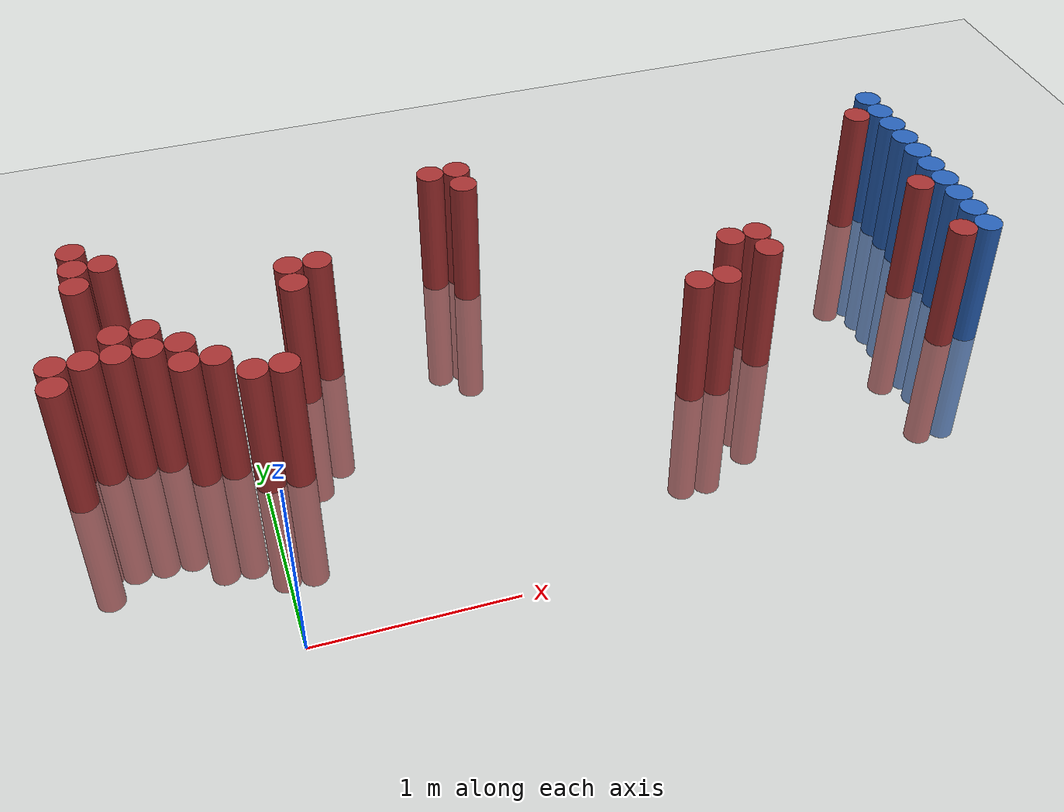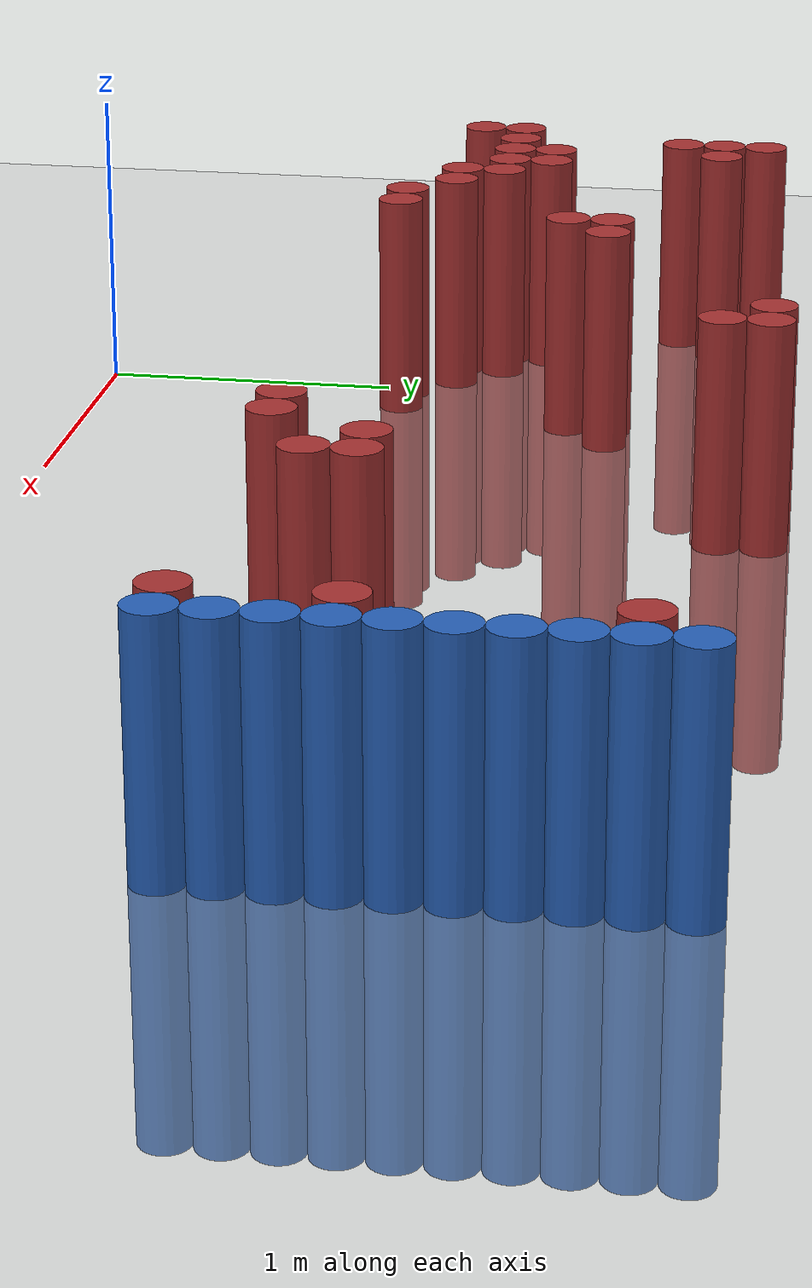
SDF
<sdf version="1.6">
 <world name="default">
  <model name="ground_plane">
   <static>1</static>
   <link name="link">
    <collision name="collision">
     <geometry><plane><normal>0 0 1</normal><size>100 100</size></plane></geometry>
     <surface><friction><ode><mu>100</mu><mu2>50</mu2></ode></friction></surface>
    </collision>
    <visual name="visual">
     <cast_shadows>0</cast_shadows>
     <geometry><plane><normal>0 0 1</normal><size>100 100</size></plane></geometry>
     <material>
      <script><uri>file://media/materials/scripts/gazebo.material</uri><name>Gazebo/Grey</name></script>
     </material>
    </visual>
   </link>
  </model>
  <model name="unit_cylinder_130">
   <static>1</static>
   <pose>3.925000 1.225000 0.000000 0.000000 0.000000 0.000000</pose>
   <link name="link">
    <inertial>
     <mass>1</mass>
     <inertia><ixx>0.145833</ixx><ixy>0</ixy><ixz>0</ixz><iyy>0.145833</iyy><iyz>0</iyz><izz>0.125</izz></inertia>
    </inertial>
    <collision name="collision">
     <geometry><cylinder><radius>0.075000</radius><length>1.5</length></cylinder></geometry>
    </collision>
    <visual name="visual">
     <geometry><cylinder><radius>0.075000</radius><length>1.5</length></cylinder></geometry>
     <material>
      <ambient>0.152000 0.379000 0.720000 1</ambient>
      <diffuse>0.152000 0.379000 0.720000 1</diffuse>
     </material>
     <material>
      <script><name>Gazebo/Grey</name><uri>file://media/materials/scripts/gazebo.material</uri></script>
     </material>
    </visual>
   </link>
  </model>
  <model name="unit_cylinder_132">
   <static>1</static>
   <pose>3.925000 1.375000 0.000000 0.000000 0.000000 0.000000</pose>
   <link name="link">
    <inertial>
     <mass>1</mass>
     <inertia><ixx>0.145833</ixx><ixy>0</ixy><ixz>0</ixz><iyy>0.145833</iyy><iyz>0</iyz><izz>0.125</izz></inertia>
    </inertial>
    <collision name="collision">
     <geometry><cylinder><radius>0.075000</radius><length>1.5</length></cylinder></geometry>
    </collision>
    <visual name="visual">
     <geometry><cylinder><radius>0.075000</radius><length>1.5</length></cylinder></geometry>
     <material>
      <ambient>0.152000 0.379000 0.720000 1</ambient>
      <diffuse>0.152000 0.379000 0.720000 1</diffuse>
     </material>
     <material>
      <script><name>Gazebo/Grey</name><uri>file://media/materials/scripts/gazebo.material</uri></script>
     </material>
    </visual>
   </link>
  </model>
  <model name="unit_cylinder_134">
   <static>1</static>
   <pose>3.925000 1.525000 0.000000 0.000000 0.000000 0.000000</pose>
   <link name="link">
    <inertial>
     <mass>1</mass>
     <inertia><ixx>0.145833</ixx><ixy>0</ixy><ixz>0</ixz><iyy>0.145833</iyy><iyz>0</iyz><izz>0.125</izz></inertia>
    </inertial>
    <collision name="collision">
     <geometry><cylinder><radius>0.075000</radius><length>1.5</length></cylinder></geometry>
    </collision>
    <visual name="visual">
     <geometry><cylinder><radius>0.075000</radius><length>1.5</length></cylinder></geometry>
     <material>
      <ambient>0.152000 0.379000 0.720000 1</ambient>
      <diffuse>0.152000 0.379000 0.720000 1</diffuse>
     </material>
     <material>
      <script><name>Gazebo/Grey</name><uri>file://media/materials/scripts/gazebo.material</uri></script>
     </material>
    </visual>
   </link>
  </model>
  <model name="unit_cylinder_136">
   <static>1</static>
   <pose>3.925000 1.675000 0.000000 0.000000 0.000000 0.000000</pose>
   <link name="link">
    <inertial>
     <mass>1</mass>
     <inertia><ixx>0.145833</ixx><ixy>0</ixy><ixz>0</ixz><iyy>0.145833</iyy><iyz>0</iyz><izz>0.125</izz></inertia>
    </inertial>
    <collision name="collision">
     <geometry><cylinder><radius>0.075000</radius><length>1.5</length></cylinder></geometry>
    </collision>
    <visual name="visual">
     <geometry><cylinder><radius>0.075000</radius><length>1.5</length></cylinder></geometry>
     <material>
      <ambient>0.152000 0.379000 0.720000 1</ambient>
      <diffuse>0.152000 0.379000 0.720000 1</diffuse>
     </material>
     <material>
      <script><name>Gazebo/Grey</name><uri>file://media/materials/scripts/gazebo.material</uri></script>
     </material>
    </visual>
   </link>
  </model>
  <model name="unit_cylinder_138">
   <static>1</static>
   <pose>3.925000 1.825000 0.000000 0.000000 0.000000 0.000000</pose>
   <link name="link">
    <inertial>
     <mass>1</mass>
     <inertia><ixx>0.145833</ixx><ixy>0</ixy><ixz>0</ixz><iyy>0.145833</iyy><iyz>0</iyz><izz>0.125</izz></inertia>
    </inertial>
    <collision name="collision">
     <geometry><cylinder><radius>0.075000</radius><length>1.5</length></cylinder></geometry>
    </collision>
    <visual name="visual">
     <geometry><cylinder><radius>0.075000</radius><length>1.5</length></cylinder></geometry>
     <material>
      <ambient>0.152000 0.379000 0.720000 1</ambient>
      <diffuse>0.152000 0.379000 0.720000 1</diffuse>
     </material>
     <material>
      <script><name>Gazebo/Grey</name><uri>file://media/materials/scripts/gazebo.material</uri></script>
     </material>
    </visual>
   </link>
  </model>
  <model name="unit_cylinder_140">
   <static>1</static>
   <pose>3.925000 1.975000 0.000000 0.000000 0.000000 0.000000</pose>
   <link name="link">
    <inertial>
     <mass>1</mass>
     <inertia><ixx>0.145833</ixx><ixy>0</ixy><ixz>0</ixz><iyy>0.145833</iyy><iyz>0</iyz><izz>0.125</izz></inertia>
    </inertial>
    <collision name="collision">
     <geometry><cylinder><radius>0.075000</radius><length>1.5</length></cylinder></geometry>
    </collision>
    <visual name="visual">
     <geometry><cylinder><radius>0.075000</radius><length>1.5</length></cylinder></geometry>
     <material>
      <ambient>0.152000 0.379000 0.720000 1</ambient>
      <diffuse>0.152000 0.379000 0.720000 1</diffuse>
     </material>
     <material>
      <script><name>Gazebo/Grey</name><uri>file://media/materials/scripts/gazebo.material</uri></script>
     </material>
    </visual>
   </link>
  </model>
  <model name="unit_cylinder_142">
   <static>1</static>
   <pose>3.925000 2.125000 0.000000 0.000000 0.000000 0.000000</pose>
   <link name="link">
    <inertial>
     <mass>1</mass>
     <inertia><ixx>0.145833</ixx><ixy>0</ixy><ixz>0</ixz><iyy>0.145833</iyy><iyz>0</iyz><izz>0.125</izz></inertia>
    </inertial>
    <collision name="collision">
     <geometry><cylinder><radius>0.075000</radius><length>1.5</length></cylinder></geometry>
    </collision>
    <visual name="visual">
     <geometry><cylinder><radius>0.075000</radius><length>1.5</length></cylinder></geometry>
     <material>
      <ambient>0.152000 0.379000 0.720000 1</ambient>
      <diffuse>0.152000 0.379000 0.720000 1</diffuse>
     </material>
     <material>
      <script><name>Gazebo/Grey</name><uri>file://media/materials/scripts/gazebo.material</uri></script>
     </material>
    </visual>
   </link>
  </model>
  <model name="unit_cylinder_144">
   <static>1</static>
   <pose>3.925000 2.275000 0.000000 0.000000 0.000000 0.000000</pose>
   <link name="link">
    <inertial>
     <mass>1</mass>
     <inertia><ixx>0.145833</ixx><ixy>0</ixy><ixz>0</ixz><iyy>0.145833</iyy><iyz>0</iyz><izz>0.125</izz></inertia>
    </inertial>
    <collision name="collision">
     <geometry><cylinder><radius>0.075000</radius><length>1.5</length></cylinder></geometry>
    </collision>
    <visual name="visual">
     <geometry><cylinder><radius>0.075000</radius><length>1.5</length></cylinder></geometry>
     <material>
      <ambient>0.152000 0.379000 0.720000 1</ambient>
      <diffuse>0.152000 0.379000 0.720000 1</diffuse>
     </material>
     <material>
      <script><name>Gazebo/Grey</name><uri>file://media/materials/scripts/gazebo.material</uri></script>
     </material>
    </visual>
   </link>
  </model>
  <model name="unit_cylinder_146">
   <static>1</static>
   <pose>3.925000 2.425000 0.000000 0.000000 0.000000 0.000000</pose>
   <link name="link">
    <inertial>
     <mass>1</mass>
     <inertia><ixx>0.145833</ixx><ixy>0</ixy><ixz>0</ixz><iyy>0.145833</iyy><iyz>0</iyz><izz>0.125</izz></inertia>
    </inertial>
    <collision name="collision">
     <geometry><cylinder><radius>0.075000</radius><length>1.5</length></cylinder></geometry>
    </collision>
    <visual name="visual">
     <geometry><cylinder><radius>0.075000</radius><length>1.5</length></cylinder></geometry>
     <material>
      <ambient>0.152000 0.379000 0.720000 1</ambient>
      <diffuse>0.152000 0.379000 0.720000 1</diffuse>
     </material>
     <material>
      <script><name>Gazebo/Grey</name><uri>file://media/materials/scripts/gazebo.material</uri></script>
     </material>
    </visual>
   </link>
  </model>
  <model name="unit_cylinder_332">
   <static>1</static>
   <pose>-0.875000 1.225000 0.000000 0.000000 0.000000 0.000000</pose>
   <link name="link">
    <inertial>
     <mass>1</mass>
     <inertia><ixx>0.145833</ixx><ixy>0</ixy><ixz>0</ixz><iyy>0.145833</iyy><iyz>0</iyz><izz>0.125</izz></inertia>
    </inertial>
    <collision name="collision">
     <geometry><cylinder><radius>0.075000</radius><length>1.5</length></cylinder></geometry>
    </collision>
    <visual name="visual">
     <geometry><cylinder><radius>0.075000</radius><length>1.5</length></cylinder></geometry>
     <material>
      <ambient>0.648000 0.192000 0.192000 1</ambient>
      <diffuse>0.648000 0.192000 0.192000 1</diffuse>
     </material>
     <material>
      <script><name>Gazebo/Grey</name><uri>file://media/materials/scripts/gazebo.material</uri></script>
     </material>
    </visual>
   </link>
  </model>
  <model name="unit_cylinder_333">
   <static>1</static>
   <pose>-0.875000 1.375000 0.000000 0.000000 0.000000 0.000000</pose>
   <link name="link">
    <inertial>
     <mass>1</mass>
     <inertia><ixx>0.145833</ixx><ixy>0</ixy><ixz>0</ixz><iyy>0.145833</iyy><iyz>0</iyz><izz>0.125</izz></inertia>
    </inertial>
    <collision name="collision">
     <geometry><cylinder><radius>0.075000</radius><length>1.5</length></cylinder></geometry>
    </collision>
    <visual name="visual">
     <geometry><cylinder><radius>0.075000</radius><length>1.5</length></cylinder></geometry>
     <material>
      <ambient>0.648000 0.192000 0.192000 1</ambient>
      <diffuse>0.648000 0.192000 0.192000 1</diffuse>
     </material>
     <material>
      <script><name>Gazebo/Grey</name><uri>file://media/materials/scripts/gazebo.material</uri></script>
     </material>
    </visual>
   </link>
  </model>
  <model name="unit_cylinder_337">
   <static>1</static>
   <pose>-0.725000 1.375000 0.000000 0.000000 0.000000 0.000000</pose>
   <link name="link">
    <inertial>
     <mass>1</mass>
     <inertia><ixx>0.145833</ixx><ixy>0</ixy><ixz>0</ixz><iyy>0.145833</iyy><iyz>0</iyz><izz>0.125</izz></inertia>
    </inertial>
    <collision name="collision">
     <geometry><cylinder><radius>0.075000</radius><length>1.5</length></cylinder></geometry>
    </collision>
    <visual name="visual">
     <geometry><cylinder><radius>0.075000</radius><length>1.5</length></cylinder></geometry>
     <material>
      <ambient>0.648000 0.192000 0.192000 1</ambient>
      <diffuse>0.648000 0.192000 0.192000 1</diffuse>
     </material>
     <material>
      <script><name>Gazebo/Grey</name><uri>file://media/materials/scripts/gazebo.material</uri></script>
     </material>
    </visual>
   </link>
  </model>
  <model name="unit_cylinder_338">
   <static>1</static>
   <pose>-0.725000 1.975000 0.000000 0.000000 0.000000 0.000000</pose>
   <link name="link">
    <inertial>
     <mass>1</mass>
     <inertia><ixx>0.145833</ixx><ixy>0</ixy><ixz>0</ixz><iyy>0.145833</iyy><iyz>0</iyz><izz>0.125</izz></inertia>
    </inertial>
    <collision name="collision">
     <geometry><cylinder><radius>0.075000</radius><length>1.5</length></cylinder></geometry>
    </collision>
    <visual name="visual">
     <geometry><cylinder><radius>0.075000</radius><length>1.5</length></cylinder></geometry>
     <material>
      <ambient>0.648000 0.192000 0.192000 1</ambient>
      <diffuse>0.648000 0.192000 0.192000 1</diffuse>
     </material>
     <material>
      <script><name>Gazebo/Grey</name><uri>file://media/materials/scripts/gazebo.material</uri></script>
     </material>
    </visual>
   </link>
  </model>
  <model name="unit_cylinder_339">
   <static>1</static>
   <pose>-0.725000 2.125000 0.000000 0.000000 0.000000 0.000000</pose>
   <link name="link">
    <inertial>
     <mass>1</mass>
     <inertia><ixx>0.145833</ixx><ixy>0</ixy><ixz>0</ixz><iyy>0.145833</iyy><iyz>0</iyz><izz>0.125</izz></inertia>
    </inertial>
    <collision name="collision">
     <geometry><cylinder><radius>0.075000</radius><length>1.5</length></cylinder></geometry>
    </collision>
    <visual name="visual">
     <geometry><cylinder><radius>0.075000</radius><length>1.5</length></cylinder></geometry>
     <material>
      <ambient>0.648000 0.192000 0.192000 1</ambient>
      <diffuse>0.648000 0.192000 0.192000 1</diffuse>
     </material>
     <material>
      <script><name>Gazebo/Grey</name><uri>file://media/materials/scripts/gazebo.material</uri></script>
     </material>
    </visual>
   </link>
  </model>
  <model name="unit_cylinder_340">
   <static>1</static>
   <pose>-0.725000 2.275000 0.000000 0.000000 0.000000 0.000000</pose>
   <link name="link">
    <inertial>
     <mass>1</mass>
     <inertia><ixx>0.145833</ixx><ixy>0</ixy><ixz>0</ixz><iyy>0.145833</iyy><iyz>0</iyz><izz>0.125</izz></inertia>
    </inertial>
    <collision name="collision">
     <geometry><cylinder><radius>0.075000</radius><length>1.5</length></cylinder></geometry>
    </collision>
    <visual name="visual">
     <geometry><cylinder><radius>0.075000</radius><length>1.5</length></cylinder></geometry>
     <material>
      <ambient>0.648000 0.192000 0.192000 1</ambient>
      <diffuse>0.648000 0.192000 0.192000 1</diffuse>
     </material>
     <material>
      <script><name>Gazebo/Grey</name><uri>file://media/materials/scripts/gazebo.material</uri></script>
     </material>
    </visual>
   </link>
  </model>
  <model name="unit_cylinder_344">
   <static>1</static>
   <pose>-0.575000 1.375000 0.000000 0.000000 0.000000 0.000000</pose>
   <link name="link">
    <inertial>
     <mass>1</mass>
     <inertia><ixx>0.145833</ixx><ixy>0</ixy><ixz>0</ixz><iyy>0.145833</iyy><iyz>0</iyz><izz>0.125</izz></inertia>
    </inertial>
    <collision name="collision">
     <geometry><cylinder><radius>0.075000</radius><length>1.5</length></cylinder></geometry>
    </collision>
    <visual name="visual">
     <geometry><cylinder><radius>0.075000</radius><length>1.5</length></cylinder></geometry>
     <material>
      <ambient>0.648000 0.192000 0.192000 1</ambient>
      <diffuse>0.648000 0.192000 0.192000 1</diffuse>
     </material>
     <material>
      <script><name>Gazebo/Grey</name><uri>file://media/materials/scripts/gazebo.material</uri></script>
     </material>
    </visual>
   </link>
  </model>
  <model name="unit_cylinder_345">
   <static>1</static>
   <pose>-0.575000 1.525000 0.000000 0.000000 0.000000 0.000000</pose>
   <link name="link">
    <inertial>
     <mass>1</mass>
     <inertia><ixx>0.145833</ixx><ixy>0</ixy><ixz>0</ixz><iyy>0.145833</iyy><iyz>0</iyz><izz>0.125</izz></inertia>
    </inertial>
    <collision name="collision">
     <geometry><cylinder><radius>0.075000</radius><length>1.5</length></cylinder></geometry>
    </collision>
    <visual name="visual">
     <geometry><cylinder><radius>0.075000</radius><length>1.5</length></cylinder></geometry>
     <material>
      <ambient>0.648000 0.192000 0.192000 1</ambient>
      <diffuse>0.648000 0.192000 0.192000 1</diffuse>
     </material>
     <material>
      <script><name>Gazebo/Grey</name><uri>file://media/materials/scripts/gazebo.material</uri></script>
     </material>
    </visual>
   </link>
  </model>
  <model name="unit_cylinder_346">
   <static>1</static>
   <pose>-0.575000 2.125000 0.000000 0.000000 0.000000 0.000000</pose>
   <link name="link">
    <inertial>
     <mass>1</mass>
     <inertia><ixx>0.145833</ixx><ixy>0</ixy><ixz>0</ixz><iyy>0.145833</iyy><iyz>0</iyz><izz>0.125</izz></inertia>
    </inertial>
    <collision name="collision">
     <geometry><cylinder><radius>0.075000</radius><length>1.5</length></cylinder></geometry>
    </collision>
    <visual name="visual">
     <geometry><cylinder><radius>0.075000</radius><length>1.5</length></cylinder></geometry>
     <material>
      <ambient>0.648000 0.192000 0.192000 1</ambient>
      <diffuse>0.648000 0.192000 0.192000 1</diffuse>
     </material>
     <material>
      <script><name>Gazebo/Grey</name><uri>file://media/materials/scripts/gazebo.material</uri></script>
     </material>
    </visual>
   </link>
  </model>
  <model name="unit_cylinder_349">
   <static>1</static>
   <pose>-0.425000 1.375000 0.000000 0.000000 0.000000 0.000000</pose>
   <link name="link">
    <inertial>
     <mass>1</mass>
     <inertia><ixx>0.145833</ixx><ixy>0</ixy><ixz>0</ixz><iyy>0.145833</iyy><iyz>0</iyz><izz>0.125</izz></inertia>
    </inertial>
    <collision name="collision">
     <geometry><cylinder><radius>0.075000</radius><length>1.5</length></cylinder></geometry>
    </collision>
    <visual name="visual">
     <geometry><cylinder><radius>0.075000</radius><length>1.5</length></cylinder></geometry>
     <material>
      <ambient>0.648000 0.192000 0.192000 1</ambient>
      <diffuse>0.648000 0.192000 0.192000 1</diffuse>
     </material>
     <material>
      <script><name>Gazebo/Grey</name><uri>file://media/materials/scripts/gazebo.material</uri></script>
     </material>
    </visual>
   </link>
  </model>
  <model name="unit_cylinder_350">
   <static>1</static>
   <pose>-0.425000 1.525000 0.000000 0.000000 0.000000 0.000000</pose>
   <link name="link">
    <inertial>
     <mass>1</mass>
     <inertia><ixx>0.145833</ixx><ixy>0</ixy><ixz>0</ixz><iyy>0.145833</iyy><iyz>0</iyz><izz>0.125</izz></inertia>
    </inertial>
    <collision name="collision">
     <geometry><cylinder><radius>0.075000</radius><length>1.5</length></cylinder></geometry>
    </collision>
    <visual name="visual">
     <geometry><cylinder><radius>0.075000</radius><length>1.5</length></cylinder></geometry>
     <material>
      <ambient>0.648000 0.192000 0.192000 1</ambient>
      <diffuse>0.648000 0.192000 0.192000 1</diffuse>
     </material>
     <material>
      <script><name>Gazebo/Grey</name><uri>file://media/materials/scripts/gazebo.material</uri></script>
     </material>
    </visual>
   </link>
  </model>
  <model name="unit_cylinder_354">
   <static>1</static>
   <pose>-0.275000 1.225000 0.000000 0.000000 0.000000 0.000000</pose>
   <link name="link">
    <inertial>
     <mass>1</mass>
     <inertia><ixx>0.145833</ixx><ixy>0</ixy><ixz>0</ixz><iyy>0.145833</iyy><iyz>0</iyz><izz>0.125</izz></inertia>
    </inertial>
    <collision name="collision">
     <geometry><cylinder><radius>0.075000</radius><length>1.5</length></cylinder></geometry>
    </collision>
    <visual name="visual">
     <geometry><cylinder><radius>0.075000</radius><length>1.5</length></cylinder></geometry>
     <material>
      <ambient>0.648000 0.192000 0.192000 1</ambient>
      <diffuse>0.648000 0.192000 0.192000 1</diffuse>
     </material>
     <material>
      <script><name>Gazebo/Grey</name><uri>file://media/materials/scripts/gazebo.material</uri></script>
     </material>
    </visual>
   </link>
  </model>
  <model name="unit_cylinder_355">
   <static>1</static>
   <pose>-0.275000 1.375000 0.000000 0.000000 0.000000 0.000000</pose>
   <link name="link">
    <inertial>
     <mass>1</mass>
     <inertia><ixx>0.145833</ixx><ixy>0</ixy><ixz>0</ixz><iyy>0.145833</iyy><iyz>0</iyz><izz>0.125</izz></inertia>
    </inertial>
    <collision name="collision">
     <geometry><cylinder><radius>0.075000</radius><length>1.5</length></cylinder></geometry>
    </collision>
    <visual name="visual">
     <geometry><cylinder><radius>0.075000</radius><length>1.5</length></cylinder></geometry>
     <material>
      <ambient>0.648000 0.192000 0.192000 1</ambient>
      <diffuse>0.648000 0.192000 0.192000 1</diffuse>
     </material>
     <material>
      <script><name>Gazebo/Grey</name><uri>file://media/materials/scripts/gazebo.material</uri></script>
     </material>
    </visual>
   </link>
  </model>
  <model name="unit_cylinder_357">
   <static>1</static>
   <pose>-0.125000 1.225000 0.000000 0.000000 0.000000 0.000000</pose>
   <link name="link">
    <inertial>
     <mass>1</mass>
     <inertia><ixx>0.145833</ixx><ixy>0</ixy><ixz>0</ixz><iyy>0.145833</iyy><iyz>0</iyz><izz>0.125</izz></inertia>
    </inertial>
    <collision name="collision">
     <geometry><cylinder><radius>0.075000</radius><length>1.5</length></cylinder></geometry>
    </collision>
    <visual name="visual">
     <geometry><cylinder><radius>0.075000</radius><length>1.5</length></cylinder></geometry>
     <material>
      <ambient>0.648000 0.192000 0.192000 1</ambient>
      <diffuse>0.648000 0.192000 0.192000 1</diffuse>
     </material>
     <material>
      <script><name>Gazebo/Grey</name><uri>file://media/materials/scripts/gazebo.material</uri></script>
     </material>
    </visual>
   </link>
  </model>
  <model name="unit_cylinder_364">
   <static>1</static>
   <pose>0.025000 1.075000 0.000000 0.000000 0.000000 0.000000</pose>
   <link name="link">
    <inertial>
     <mass>1</mass>
     <inertia><ixx>0.145833</ixx><ixy>0</ixy><ixz>0</ixz><iyy>0.145833</iyy><iyz>0</iyz><izz>0.125</izz></inertia>
    </inertial>
    <collision name="collision">
     <geometry><cylinder><radius>0.075000</radius><length>1.5</length></cylinder></geometry>
    </collision>
    <visual name="visual">
     <geometry><cylinder><radius>0.075000</radius><length>1.5</length></cylinder></geometry>
     <material>
      <ambient>0.648000 0.192000 0.192000 1</ambient>
      <diffuse>0.648000 0.192000 0.192000 1</diffuse>
     </material>
     <material>
      <script><name>Gazebo/Grey</name><uri>file://media/materials/scripts/gazebo.material</uri></script>
     </material>
    </visual>
   </link>
  </model>
  <model name="unit_cylinder_373">
   <static>1</static>
   <pose>0.175000 1.075000 0.000000 0.000000 0.000000 0.000000</pose>
   <link name="link">
    <inertial>
     <mass>1</mass>
     <inertia><ixx>0.145833</ixx><ixy>0</ixy><ixz>0</ixz><iyy>0.145833</iyy><iyz>0</iyz><izz>0.125</izz></inertia>
    </inertial>
    <collision name="collision">
     <geometry><cylinder><radius>0.075000</radius><length>1.5</length></cylinder></geometry>
    </collision>
    <visual name="visual">
     <geometry><cylinder><radius>0.075000</radius><length>1.5</length></cylinder></geometry>
     <material>
      <ambient>0.648000 0.192000 0.192000 1</ambient>
      <diffuse>0.648000 0.192000 0.192000 1</diffuse>
     </material>
     <material>
      <script><name>Gazebo/Grey</name><uri>file://media/materials/scripts/gazebo.material</uri></script>
     </material>
    </visual>
   </link>
  </model>
  <model name="unit_cylinder_379">
   <static>1</static>
   <pose>0.325000 1.675000 0.000000 0.000000 0.000000 0.000000</pose>
   <link name="link">
    <inertial>
     <mass>1</mass>
     <inertia><ixx>0.145833</ixx><ixy>0</ixy><ixz>0</ixz><iyy>0.145833</iyy><iyz>0</iyz><izz>0.125</izz></inertia>
    </inertial>
    <collision name="collision">
     <geometry><cylinder><radius>0.075000</radius><length>1.5</length></cylinder></geometry>
    </collision>
    <visual name="visual">
     <geometry><cylinder><radius>0.075000</radius><length>1.5</length></cylinder></geometry>
     <material>
      <ambient>0.648000 0.192000 0.192000 1</ambient>
      <diffuse>0.648000 0.192000 0.192000 1</diffuse>
     </material>
     <material>
      <script><name>Gazebo/Grey</name><uri>file://media/materials/scripts/gazebo.material</uri></script>
     </material>
    </visual>
   </link>
  </model>
  <model name="unit_cylinder_380">
   <static>1</static>
   <pose>0.325000 1.825000 0.000000 0.000000 0.000000 0.000000</pose>
   <link name="link">
    <inertial>
     <mass>1</mass>
     <inertia><ixx>0.145833</ixx><ixy>0</ixy><ixz>0</ixz><iyy>0.145833</iyy><iyz>0</iyz><izz>0.125</izz></inertia>
    </inertial>
    <collision name="collision">
     <geometry><cylinder><radius>0.075000</radius><length>1.5</length></cylinder></geometry>
    </collision>
    <visual name="visual">
     <geometry><cylinder><radius>0.075000</radius><length>1.5</length></cylinder></geometry>
     <material>
      <ambient>0.648000 0.192000 0.192000 1</ambient>
      <diffuse>0.648000 0.192000 0.192000 1</diffuse>
     </material>
     <material>
      <script><name>Gazebo/Grey</name><uri>file://media/materials/scripts/gazebo.material</uri></script>
     </material>
    </visual>
   </link>
  </model>
  <model name="unit_cylinder_383">
   <static>1</static>
   <pose>0.475000 1.825000 0.000000 0.000000 0.000000 0.000000</pose>
   <link name="link">
    <inertial>
     <mass>1</mass>
     <inertia><ixx>0.145833</ixx><ixy>0</ixy><ixz>0</ixz><iyy>0.145833</iyy><iyz>0</iyz><izz>0.125</izz></inertia>
    </inertial>
    <collision name="collision">
     <geometry><cylinder><radius>0.075000</radius><length>1.5</length></cylinder></geometry>
    </collision>
    <visual name="visual">
     <geometry><cylinder><radius>0.075000</radius><length>1.5</length></cylinder></geometry>
     <material>
      <ambient>0.648000 0.192000 0.192000 1</ambient>
      <diffuse>0.648000 0.192000 0.192000 1</diffuse>
     </material>
     <material>
      <script><name>Gazebo/Grey</name><uri>file://media/materials/scripts/gazebo.material</uri></script>
     </material>
    </visual>
   </link>
  </model>
  <model name="unit_cylinder_399">
   <static>1</static>
   <pose>1.225000 2.425000 0.000000 0.000000 0.000000 0.000000</pose>
   <link name="link">
    <inertial>
     <mass>1</mass>
     <inertia><ixx>0.145833</ixx><ixy>0</ixy><ixz>0</ixz><iyy>0.145833</iyy><iyz>0</iyz><izz>0.125</izz></inertia>
    </inertial>
    <collision name="collision">
     <geometry><cylinder><radius>0.075000</radius><length>1.5</length></cylinder></geometry>
    </collision>
    <visual name="visual">
     <geometry><cylinder><radius>0.075000</radius><length>1.5</length></cylinder></geometry>
     <material>
      <ambient>0.648000 0.192000 0.192000 1</ambient>
      <diffuse>0.648000 0.192000 0.192000 1</diffuse>
     </material>
     <material>
      <script><name>Gazebo/Grey</name><uri>file://media/materials/scripts/gazebo.material</uri></script>
     </material>
    </visual>
   </link>
  </model>
  <model name="unit_cylinder_401">
   <static>1</static>
   <pose>1.375000 2.275000 0.000000 0.000000 0.000000 0.000000</pose>
   <link name="link">
    <inertial>
     <mass>1</mass>
     <inertia><ixx>0.145833</ixx><ixy>0</ixy><ixz>0</ixz><iyy>0.145833</iyy><iyz>0</iyz><izz>0.125</izz></inertia>
    </inertial>
    <collision name="collision">
     <geometry><cylinder><radius>0.075000</radius><length>1.5</length></cylinder></geometry>
    </collision>
    <visual name="visual">
     <geometry><cylinder><radius>0.075000</radius><length>1.5</length></cylinder></geometry>
     <material>
      <ambient>0.648000 0.192000 0.192000 1</ambient>
      <diffuse>0.648000 0.192000 0.192000 1</diffuse>
     </material>
     <material>
      <script><name>Gazebo/Grey</name><uri>file://media/materials/scripts/gazebo.material</uri></script>
     </material>
    </visual>
   </link>
  </model>
  <model name="unit_cylinder_402">
   <static>1</static>
   <pose>1.375000 2.425000 0.000000 0.000000 0.000000 0.000000</pose>
   <link name="link">
    <inertial>
     <mass>1</mass>
     <inertia><ixx>0.145833</ixx><ixy>0</ixy><ixz>0</ixz><iyy>0.145833</iyy><iyz>0</iyz><izz>0.125</izz></inertia>
    </inertial>
    <collision name="collision">
     <geometry><cylinder><radius>0.075000</radius><length>1.5</length></cylinder></geometry>
    </collision>
    <visual name="visual">
     <geometry><cylinder><radius>0.075000</radius><length>1.5</length></cylinder></geometry>
     <material>
      <ambient>0.648000 0.192000 0.192000 1</ambient>
      <diffuse>0.648000 0.192000 0.192000 1</diffuse>
     </material>
     <material>
      <script><name>Gazebo/Grey</name><uri>file://media/materials/scripts/gazebo.material</uri></script>
     </material>
    </visual>
   </link>
  </model>
  <model name="unit_cylinder_411">
   <static>1</static>
   <pose>2.275000 1.075000 0.000000 0.000000 0.000000 0.000000</pose>
   <link name="link">
    <inertial>
     <mass>1</mass>
     <inertia><ixx>0.145833</ixx><ixy>0</ixy><ixz>0</ixz><iyy>0.145833</iyy><iyz>0</iyz><izz>0.125</izz></inertia>
    </inertial>
    <collision name="collision">
     <geometry><cylinder><radius>0.075000</radius><length>1.5</length></cylinder></geometry>
    </collision>
    <visual name="visual">
     <geometry><cylinder><radius>0.075000</radius><length>1.5</length></cylinder></geometry>
     <material>
      <ambient>0.648000 0.192000 0.192000 1</ambient>
      <diffuse>0.648000 0.192000 0.192000 1</diffuse>
     </material>
     <material>
      <script><name>Gazebo/Grey</name><uri>file://media/materials/scripts/gazebo.material</uri></script>
     </material>
    </visual>
   </link>
  </model>
  <model name="unit_cylinder_414">
   <static>1</static>
   <pose>2.425000 1.075000 0.000000 0.000000 0.000000 0.000000</pose>
   <link name="link">
    <inertial>
     <mass>1</mass>
     <inertia><ixx>0.145833</ixx><ixy>0</ixy><ixz>0</ixz><iyy>0.145833</iyy><iyz>0</iyz><izz>0.125</izz></inertia>
    </inertial>
    <collision name="collision">
     <geometry><cylinder><radius>0.075000</radius><length>1.5</length></cylinder></geometry>
    </collision>
    <visual name="visual">
     <geometry><cylinder><radius>0.075000</radius><length>1.5</length></cylinder></geometry>
     <material>
      <ambient>0.648000 0.192000 0.192000 1</ambient>
      <diffuse>0.648000 0.192000 0.192000 1</diffuse>
     </material>
     <material>
      <script><name>Gazebo/Grey</name><uri>file://media/materials/scripts/gazebo.material</uri></script>
     </material>
    </visual>
   </link>
  </model>
  <model name="unit_cylinder_417">
   <static>1</static>
   <pose>2.575000 1.375000 0.000000 0.000000 0.000000 0.000000</pose>
   <link name="link">
    <inertial>
     <mass>1</mass>
     <inertia><ixx>0.145833</ixx><ixy>0</ixy><ixz>0</ixz><iyy>0.145833</iyy><iyz>0</iyz><izz>0.125</izz></inertia>
    </inertial>
    <collision name="collision">
     <geometry><cylinder><radius>0.075000</radius><length>1.5</length></cylinder></geometry>
    </collision>
    <visual name="visual">
     <geometry><cylinder><radius>0.075000</radius><length>1.5</length></cylinder></geometry>
     <material>
      <ambient>0.648000 0.192000 0.192000 1</ambient>
      <diffuse>0.648000 0.192000 0.192000 1</diffuse>
     </material>
     <material>
      <script><name>Gazebo/Grey</name><uri>file://media/materials/scripts/gazebo.material</uri></script>
     </material>
    </visual>
   </link>
  </model>
  <model name="unit_cylinder_418">
   <static>1</static>
   <pose>2.725000 1.225000 0.000000 0.000000 0.000000 0.000000</pose>
   <link name="link">
    <inertial>
     <mass>1</mass>
     <inertia><ixx>0.145833</ixx><ixy>0</ixy><ixz>0</ixz><iyy>0.145833</iyy><iyz>0</iyz><izz>0.125</izz></inertia>
    </inertial>
    <collision name="collision">
     <geometry><cylinder><radius>0.075000</radius><length>1.5</length></cylinder></geometry>
    </collision>
    <visual name="visual">
     <geometry><cylinder><radius>0.075000</radius><length>1.5</length></cylinder></geometry>
     <material>
      <ambient>0.648000 0.192000 0.192000 1</ambient>
      <diffuse>0.648000 0.192000 0.192000 1</diffuse>
     </material>
     <material>
      <script><name>Gazebo/Grey</name><uri>file://media/materials/scripts/gazebo.material</uri></script>
     </material>
    </visual>
   </link>
  </model>
  <model name="unit_cylinder_419">
   <static>1</static>
   <pose>2.725000 1.375000 0.000000 0.000000 0.000000 0.000000</pose>
   <link name="link">
    <inertial>
     <mass>1</mass>
     <inertia><ixx>0.145833</ixx><ixy>0</ixy><ixz>0</ixz><iyy>0.145833</iyy><iyz>0</iyz><izz>0.125</izz></inertia>
    </inertial>
    <collision name="collision">
     <geometry><cylinder><radius>0.075000</radius><length>1.5</length></cylinder></geometry>
    </collision>
    <visual name="visual">
     <geometry><cylinder><radius>0.075000</radius><length>1.5</length></cylinder></geometry>
     <material>
      <ambient>0.648000 0.192000 0.192000 1</ambient>
      <diffuse>0.648000 0.192000 0.192000 1</diffuse>
     </material>
     <material>
      <script><name>Gazebo/Grey</name><uri>file://media/materials/scripts/gazebo.material</uri></script>
     </material>
    </visual>
   </link>
  </model>
  <model name="unit_cylinder_436">
   <static>1</static>
   <pose>3.775000 1.075000 0.000000 0.000000 0.000000 0.000000</pose>
   <link name="link">
    <inertial>
     <mass>1</mass>
     <inertia><ixx>0.145833</ixx><ixy>0</ixy><ixz>0</ixz><iyy>0.145833</iyy><iyz>0</iyz><izz>0.125</izz></inertia>
    </inertial>
    <collision name="collision">
     <geometry><cylinder><radius>0.075000</radius><length>1.5</length></cylinder></geometry>
    </collision>
    <visual name="visual">
     <geometry><cylinder><radius>0.075000</radius><length>1.5</length></cylinder></geometry>
     <material>
      <ambient>0.648000 0.192000 0.192000 1</ambient>
      <diffuse>0.648000 0.192000 0.192000 1</diffuse>
     </material>
     <material>
      <script><name>Gazebo/Grey</name><uri>file://media/materials/scripts/gazebo.material</uri></script>
     </material>
    </visual>
   </link>
  </model>
  <model name="unit_cylinder_437">
   <static>1</static>
   <pose>3.775000 1.525000 0.000000 0.000000 0.000000 0.000000</pose>
   <link name="link">
    <inertial>
     <mass>1</mass>
     <inertia><ixx>0.145833</ixx><ixy>0</ixy><ixz>0</ixz><iyy>0.145833</iyy><iyz>0</iyz><izz>0.125</izz></inertia>
    </inertial>
    <collision name="collision">
     <geometry><cylinder><radius>0.075000</radius><length>1.5</length></cylinder></geometry>
    </collision>
    <visual name="visual">
     <geometry><cylinder><radius>0.075000</radius><length>1.5</length></cylinder></geometry>
     <material>
      <ambient>0.648000 0.192000 0.192000 1</ambient>
      <diffuse>0.648000 0.192000 0.192000 1</diffuse>
     </material>
     <material>
      <script><name>Gazebo/Grey</name><uri>file://media/materials/scripts/gazebo.material</uri></script>
     </material>
    </visual>
   </link>
  </model>
  <model name="unit_cylinder_438">
   <static>1</static>
   <pose>3.775000 2.275000 0.000000 0.000000 0.000000 0.000000</pose>
   <link name="link">
    <inertial>
     <mass>1</mass>
     <inertia><ixx>0.145833</ixx><ixy>0</ixy><ixz>0</ixz><iyy>0.145833</iyy><iyz>0</iyz><izz>0.125</izz></inertia>
    </inertial>
    <collision name="collision">
     <geometry><cylinder><radius>0.075000</radius><length>1.5</length></cylinder></geometry>
    </collision>
    <visual name="visual">
     <geometry><cylinder><radius>0.075000</radius><length>1.5</length></cylinder></geometry>
     <material>
      <ambient>0.648000 0.192000 0.192000 1</ambient>
      <diffuse>0.648000 0.192000 0.192000 1</diffuse>
     </material>
     <material>
      <script><name>Gazebo/Grey</name><uri>file://media/materials/scripts/gazebo.material</uri></script>
     </material>
    </visual>
   </link>
  </model>
  <model name="unit_cylinder_464">
   <static>1</static>
   <pose>3.925000 1.075000 0.000000 0.000000 0.000000 0.000000</pose>
   <link name="link">
    <inertial>
     <mass>1</mass>
     <inertia><ixx>0.145833</ixx><ixy>0</ixy><ixz>0</ixz><iyy>0.145833</iyy><iyz>0</iyz><izz>0.125</izz></inertia>
    </inertial>
    <collision name="collision">
     <geometry><cylinder><radius>0.075000</radius><length>1.5</length></cylinder></geometry>
    </collision>
    <visual name="visual">
     <geometry><cylinder><radius>0.075000</radius><length>1.5</length></cylinder></geometry>
     <material>
      <ambient>0.152000 0.379000 0.720000 1</ambient>
      <diffuse>0.152000 0.379000 0.720000 1</diffuse>
     </material>
     <material>
      <script><name>Gazebo/Grey</name><uri>file://media/materials/scripts/gazebo.material</uri></script>
     </material>
    </visual>
   </link>
  </model>
  <model name="unit_cylinder_465">
   <static>1</static>
   <pose>3.925000 1.225000 0.000000 0.000000 0.000000 0.000000</pose>
   <link name="link">
    <inertial>
     <mass>1</mass>
     <inertia><ixx>0.145833</ixx><ixy>0</ixy><ixz>0</ixz><iyy>0.145833</iyy><iyz>0</iyz><izz>0.125</izz></inertia>
    </inertial>
    <collision name="collision">
     <geometry><cylinder><radius>0.075000</radius><length>1.5</length></cylinder></geometry>
    </collision>
    <visual name="visual">
     <geometry><cylinder><radius>0.075000</radius><length>1.5</length></cylinder></geometry>
     <material>
      <ambient>0.152000 0.379000 0.720000 1</ambient>
      <diffuse>0.152000 0.379000 0.720000 1</diffuse>
     </material>
     <material>
      <script><name>Gazebo/Grey</name><uri>file://media/materials/scripts/gazebo.material</uri></script>
     </material>
    </visual>
   </link>
  </model>
  <model name="unit_cylinder_466">
   <static>1</static>
   <pose>3.925000 1.375000 0.000000 0.000000 0.000000 0.000000</pose>
   <link name="link">
    <inertial>
     <mass>1</mass>
     <inertia><ixx>0.145833</ixx><ixy>0</ixy><ixz>0</ixz><iyy>0.145833</iyy><iyz>0</iyz><izz>0.125</izz></inertia>
    </inertial>
    <collision name="collision">
     <geometry><cylinder><radius>0.075000</radius><length>1.5</length></cylinder></geometry>
    </collision>
    <visual name="visual">
     <geometry><cylinder><radius>0.075000</radius><length>1.5</length></cylinder></geometry>
     <material>
      <ambient>0.152000 0.379000 0.720000 1</ambient>
      <diffuse>0.152000 0.379000 0.720000 1</diffuse>
     </material>
     <material>
      <script><name>Gazebo/Grey</name><uri>file://media/materials/scripts/gazebo.material</uri></script>
     </material>
    </visual>
   </link>
  </model>
  <model name="unit_cylinder_467">
   <static>1</static>
   <pose>3.925000 1.525000 0.000000 0.000000 0.000000 0.000000</pose>
   <link name="link">
    <inertial>
     <mass>1</mass>
     <inertia><ixx>0.145833</ixx><ixy>0</ixy><ixz>0</ixz><iyy>0.145833</iyy><iyz>0</iyz><izz>0.125</izz></inertia>
    </inertial>
    <collision name="collision">
     <geometry><cylinder><radius>0.075000</radius><length>1.5</length></cylinder></geometry>
    </collision>
    <visual name="visual">
     <geometry><cylinder><radius>0.075000</radius><length>1.5</length></cylinder></geometry>
     <material>
      <ambient>0.152000 0.379000 0.720000 1</ambient>
      <diffuse>0.152000 0.379000 0.720000 1</diffuse>
     </material>
     <material>
      <script><name>Gazebo/Grey</name><uri>file://media/materials/scripts/gazebo.material</uri></script>
     </material>
    </visual>
   </link>
  </model>
  <model name="unit_cylinder_468">
   <static>1</static>
   <pose>3.925000 1.675000 0.000000 0.000000 0.000000 0.000000</pose>
   <link name="link">
    <inertial>
     <mass>1</mass>
     <inertia><ixx>0.145833</ixx><ixy>0</ixy><ixz>0</ixz><iyy>0.145833</iyy><iyz>0</iyz><izz>0.125</izz></inertia>
    </inertial>
    <collision name="collision">
     <geometry><cylinder><radius>0.075000</radius><length>1.5</length></cylinder></geometry>
    </collision>
    <visual name="visual">
     <geometry><cylinder><radius>0.075000</radius><length>1.5</length></cylinder></geometry>
     <material>
      <ambient>0.152000 0.379000 0.720000 1</ambient>
      <diffuse>0.152000 0.379000 0.720000 1</diffuse>
     </material>
     <material>
      <script><name>Gazebo/Grey</name><uri>file://media/materials/scripts/gazebo.material</uri></script>
     </material>
    </visual>
   </link>
  </model>
  <model name="unit_cylinder_469">
   <static>1</static>
   <pose>3.925000 1.825000 0.000000 0.000000 0.000000 0.000000</pose>
   <link name="link">
    <inertial>
     <mass>1</mass>
     <inertia><ixx>0.145833</ixx><ixy>0</ixy><ixz>0</ixz><iyy>0.145833</iyy><iyz>0</iyz><izz>0.125</izz></inertia>
    </inertial>
    <collision name="collision">
     <geometry><cylinder><radius>0.075000</radius><length>1.5</length></cylinder></geometry>
    </collision>
    <visual name="visual">
     <geometry><cylinder><radius>0.075000</radius><length>1.5</length></cylinder></geometry>
     <material>
      <ambient>0.152000 0.379000 0.720000 1</ambient>
      <diffuse>0.152000 0.379000 0.720000 1</diffuse>
     </material>
     <material>
      <script><name>Gazebo/Grey</name><uri>file://media/materials/scripts/gazebo.material</uri></script>
     </material>
    </visual>
   </link>
  </model>
  <model name="unit_cylinder_470">
   <static>1</static>
   <pose>3.925000 1.975000 0.000000 0.000000 0.000000 0.000000</pose>
   <link name="link">
    <inertial>
     <mass>1</mass>
     <inertia><ixx>0.145833</ixx><ixy>0</ixy><ixz>0</ixz><iyy>0.145833</iyy><iyz>0</iyz><izz>0.125</izz></inertia>
    </inertial>
    <collision name="collision">
     <geometry><cylinder><radius>0.075000</radius><length>1.5</length></cylinder></geometry>
    </collision>
    <visual name="visual">
     <geometry><cylinder><radius>0.075000</radius><length>1.5</length></cylinder></geometry>
     <material>
      <ambient>0.152000 0.379000 0.720000 1</ambient>
      <diffuse>0.152000 0.379000 0.720000 1</diffuse>
     </material>
     <material>
      <script><name>Gazebo/Grey</name><uri>file://media/materials/scripts/gazebo.material</uri></script>
     </material>
    </visual>
   </link>
  </model>
  <model name="unit_cylinder_471">
   <static>1</static>
   <pose>3.925000 2.125000 0.000000 0.000000 0.000000 0.000000</pose>
   <link name="link">
    <inertial>
     <mass>1</mass>
     <inertia><ixx>0.145833</ixx><ixy>0</ixy><ixz>0</ixz><iyy>0.145833</iyy><iyz>0</iyz><izz>0.125</izz></inertia>
    </inertial>
    <collision name="collision">
     <geometry><cylinder><radius>0.075000</radius><length>1.5</length></cylinder></geometry>
    </collision>
    <visual name="visual">
     <geometry><cylinder><radius>0.075000</radius><length>1.5</length></cylinder></geometry>
     <material>
      <ambient>0.152000 0.379000 0.720000 1</ambient>
      <diffuse>0.152000 0.379000 0.720000 1</diffuse>
     </material>
     <material>
      <script><name>Gazebo/Grey</name><uri>file://media/materials/scripts/gazebo.material</uri></script>
     </material>
    </visual>
   </link>
  </model>
  <model name="unit_cylinder_472">
   <static>1</static>
   <pose>3.925000 2.275000 0.000000 0.000000 0.000000 0.000000</pose>
   <link name="link">
    <inertial>
     <mass>1</mass>
     <inertia><ixx>0.145833</ixx><ixy>0</ixy><ixz>0</ixz><iyy>0.145833</iyy><iyz>0</iyz><izz>0.125</izz></inertia>
    </inertial>
    <collision name="collision">
     <geometry><cylinder><radius>0.075000</radius><length>1.5</length></cylinder></geometry>
    </collision>
    <visual name="visual">
     <geometry><cylinder><radius>0.075000</radius><length>1.5</length></cylinder></geometry>
     <material>
      <ambient>0.152000 0.379000 0.720000 1</ambient>
      <diffuse>0.152000 0.379000 0.720000 1</diffuse>
     </material>
     <material>
      <script><name>Gazebo/Grey</name><uri>file://media/materials/scripts/gazebo.material</uri></script>
     </material>
    </visual>
   </link>
  </model>
  <model name="unit_cylinder_473">
   <static>1</static>
   <pose>3.925000 2.425000 0.000000 0.000000 0.000000 0.000000</pose>
   <link name="link">
    <inertial>
     <mass>1</mass>
     <inertia><ixx>0.145833</ixx><ixy>0</ixy><ixz>0</ixz><iyy>0.145833</iyy><iyz>0</iyz><izz>0.125</izz></inertia>
    </inertial>
    <collision name="collision">
     <geometry><cylinder><radius>0.075000</radius><length>1.5</length></cylinder></geometry>
    </collision>
    <visual name="visual">
     <geometry><cylinder><radius>0.075000</radius><length>1.5</length></cylinder></geometry>
     <material>
      <ambient>0.152000 0.379000 0.720000 1</ambient>
      <diffuse>0.152000 0.379000 0.720000 1</diffuse>
     </material>
     <material>
      <script><name>Gazebo/Grey</name><uri>file://media/materials/scripts/gazebo.material</uri></script>
     </material>
    </visual>
   </link>
  </model>
 </world>
</sdf>
